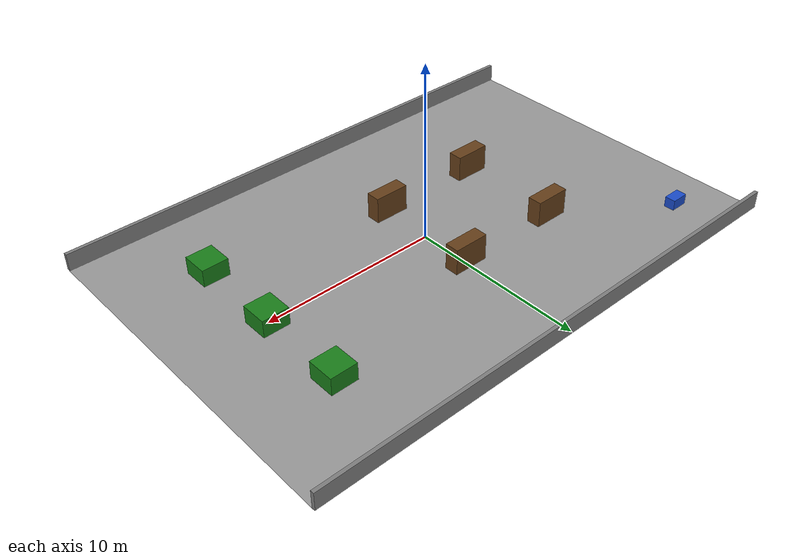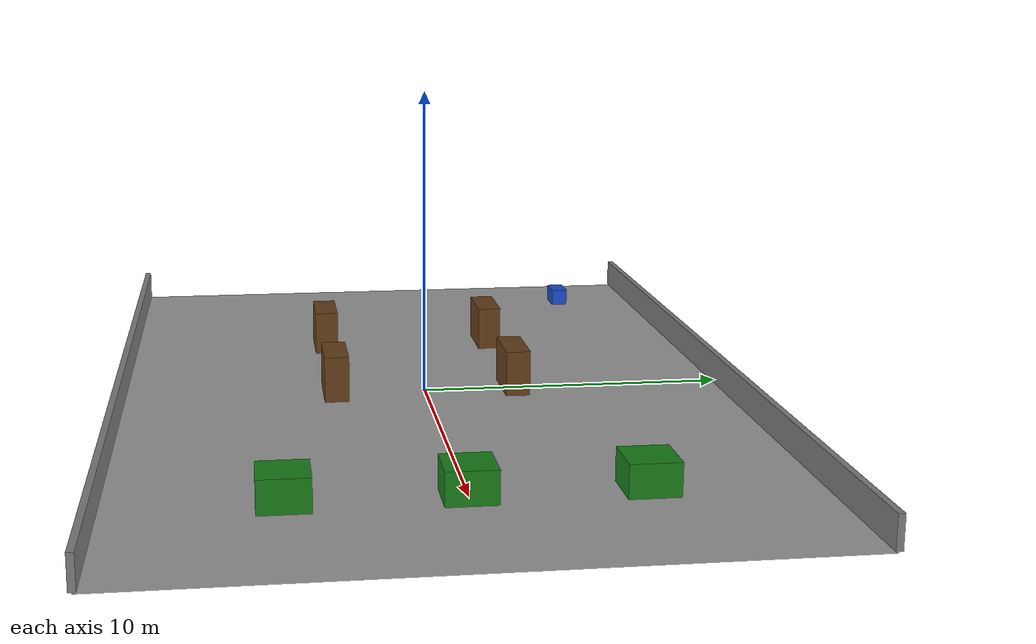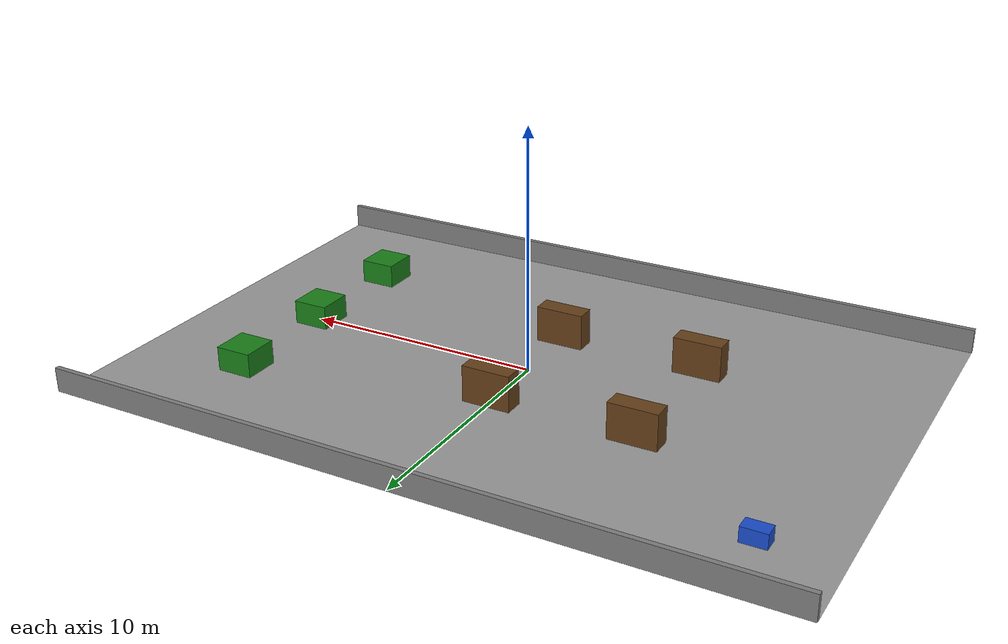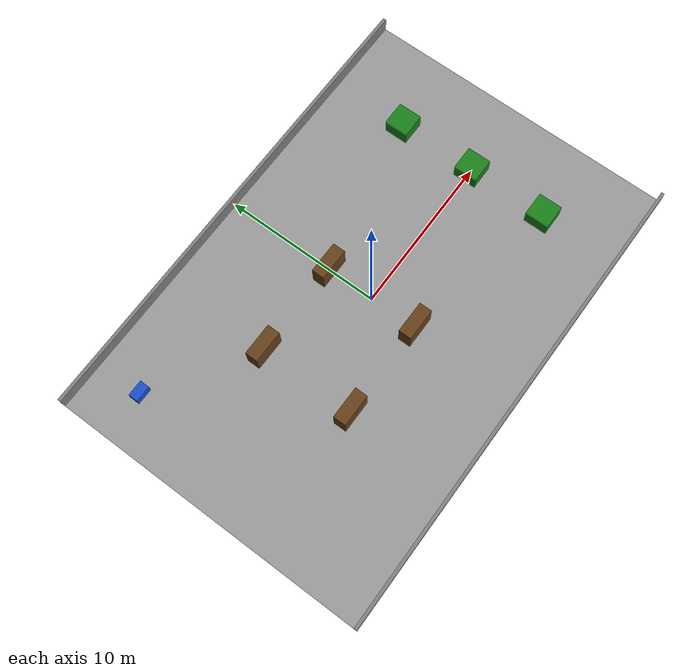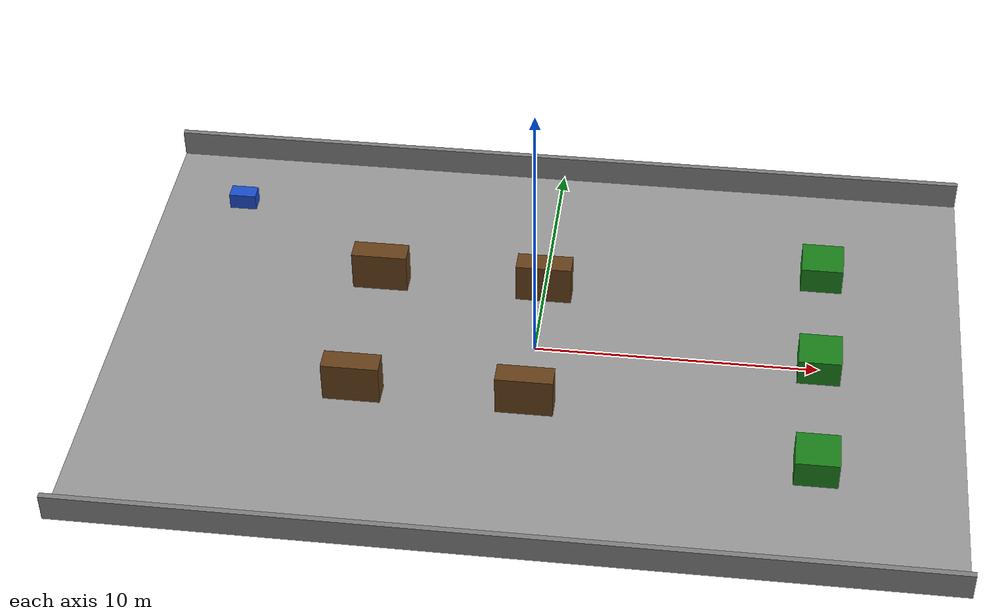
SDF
<?xml version="1.0" ?>
<sdf version="1.9">
  <world name="edgefleet_warehouse">

    <!-- Physics -->
    <physics name="1ms" type="dart">
      <max_step_size>0.001</max_step_size>
      <real_time_factor>1.0</real_time_factor>
      <real_time_update_rate>1000</real_time_update_rate>
    </physics>

    <!-- Lighting -->
    <light type="directional" name="sun">
      <pose>0 0 10 0 0 0</pose>
      <diffuse>0.8 0.8 0.8 1</diffuse>
      <specular>0.2 0.2 0.2 1</specular>
      <attenuation>
        <range>1000</range>
        <constant>0.9</constant>
        <linear>0.01</linear>
        <quadratic>0.001</quadratic>
      </attenuation>
      <direction>-0.5 0.1 -0.9</direction>
    </light>

    <!-- Ground plane -->
    <include>
      <uri>https://fuel.gazebos.org/1.0/OpenRobotics/models/Ground Plane</uri>
    </include>

    <!-- Warehouse floor — 30m x 20m -->
    <model name="warehouse_floor">
      <static>true</static>
      <pose>0 0 0 0 0 0</pose>
      <link name="floor">
        <visual name="floor_visual">
          <geometry>
            <plane>
              <normal>0 0 1</normal>
              <size>30 20</size>
            </plane>
          </geometry>
          <material>
            <ambient>0.6 0.6 0.6 1</ambient>
            <diffuse>0.6 0.6 0.6 1</diffuse>
          </material>
        </visual>
        <collision name="floor_collision">
          <geometry>
            <plane>
              <normal>0 0 1</normal>
              <size>30 20</size>
            </plane>
          </geometry>
        </collision>
      </link>
    </model>

    <!-- Shelving units -->
    <model name="shelf_a1">
      <static>true</static>
      <pose>-6 3 0.75 0 0 0</pose>
      <link name="shelf">
        <visual name="shelf_visual">
          <geometry>
            <box><size>2 0.8 1.5</size></box>
          </geometry>
          <material>
            <ambient>0.4 0.25 0.1 1</ambient>
            <diffuse>0.4 0.25 0.1 1</diffuse>
          </material>
        </visual>
        <collision name="shelf_collision">
          <geometry>
            <box><size>2 0.8 1.5</size></box>
          </geometry>
        </collision>
      </link>
    </model>

    <model name="shelf_a2">
      <static>true</static>
      <pose>-6 -3 0.75 0 0 0</pose>
      <link name="shelf">
        <visual name="shelf_visual">
          <geometry>
            <box><size>2 0.8 1.5</size></box>
          </geometry>
          <material>
            <ambient>0.4 0.25 0.1 1</ambient>
            <diffuse>0.4 0.25 0.1 1</diffuse>
          </material>
        </visual>
        <collision name="shelf_collision">
          <geometry>
            <box><size>2 0.8 1.5</size></box>
          </geometry>
        </collision>
      </link>
    </model>

    <model name="shelf_b1">
      <static>true</static>
      <pose>0 3 0.75 0 0 0</pose>
      <link name="shelf">
        <visual name="shelf_visual">
          <geometry>
            <box><size>2 0.8 1.5</size></box>
          </geometry>
          <material>
            <ambient>0.4 0.25 0.1 1</ambient>
            <diffuse>0.4 0.25 0.1 1</diffuse>
          </material>
        </visual>
        <collision name="shelf_collision">
          <geometry>
            <box><size>2 0.8 1.5</size></box>
          </geometry>
        </collision>
      </link>
    </model>

    <model name="shelf_b2">
      <static>true</static>
      <pose>0 -3 0.75 0 0 0</pose>
      <link name="shelf">
        <visual name="shelf_visual">
          <geometry>
            <box><size>2 0.8 1.5</size></box>
          </geometry>
          <material>
            <ambient>0.4 0.25 0.1 1</ambient>
            <diffuse>0.4 0.25 0.1 1</diffuse>
          </material>
        </visual>
        <collision name="shelf_collision">
          <geometry>
            <box><size>2 0.8 1.5</size></box>
          </geometry>
        </collision>
      </link>
    </model>

    <!-- Packing stations -->
    <model name="packing_station_1">
      <static>true</static>
      <pose>10 5 0.5 0 0 0</pose>
      <link name="station">
        <visual name="station_visual">
          <geometry>
            <box><size>1.5 1.5 1.0</size></box>
          </geometry>
          <material>
            <ambient>0.1 0.5 0.1 1</ambient>
            <diffuse>0.1 0.5 0.1 1</diffuse>
          </material>
        </visual>
        <collision name="station_collision">
          <geometry>
            <box><size>1.5 1.5 1.0</size></box>
          </geometry>
        </collision>
      </link>
    </model>

    <model name="packing_station_2">
      <static>true</static>
      <pose>10 0 0.5 0 0 0</pose>
      <link name="station">
        <visual name="station_visual">
          <geometry>
            <box><size>1.5 1.5 1.0</size></box>
          </geometry>
          <material>
            <ambient>0.1 0.5 0.1 1</ambient>
            <diffuse>0.1 0.5 0.1 1</diffuse>
          </material>
        </visual>
        <collision name="station_collision">
          <geometry>
            <box><size>1.5 1.5 1.0</size></box>
          </geometry>
        </collision>
      </link>
    </model>

    <model name="packing_station_3">
      <static>true</static>
      <pose>10 -5 0.5 0 0 0</pose>
      <link name="station">
        <visual name="station_visual">
          <geometry>
            <box><size>1.5 1.5 1.0</size></box>
          </geometry>
          <material>
            <ambient>0.1 0.5 0.1 1</ambient>
            <diffuse>0.1 0.5 0.1 1</diffuse>
          </material>
        </visual>
        <collision name="station_collision">
          <geometry>
            <box><size>1.5 1.5 1.0</size></box>
          </geometry>
        </collision>
      </link>
    </model>

    <!-- Charging stations -->
    <model name="charging_station_1">
      <static>true</static>
      <pose>-12 7 0.3 0 0 0</pose>
      <link name="charger">
        <visual name="charger_visual">
          <geometry>
            <box><size>1 0.6 0.6</size></box>
          </geometry>
          <material>
            <ambient>0.1 0.3 0.8 1</ambient>
            <diffuse>0.1 0.3 0.8 1</diffuse>
          </material>
        </visual>
        <collision name="charger_collision">
          <geometry>
            <box><size>1 0.6 0.6</size></box>
          </geometry>
        </collision>
      </link>
    </model>

    <!-- Walls -->
    <model name="north_wall">
      <static>true</static>
      <pose>0 10 0.5 0 0 0</pose>
      <link name="wall">
        <visual name="wall_visual">
          <geometry>
            <box><size>30 0.2 1</size></box>
          </geometry>
          <material>
            <ambient>0.5 0.5 0.5 1</ambient>
            <diffuse>0.5 0.5 0.5 1</diffuse>
          </material>
        </visual>
        <collision name="wall_collision">
          <geometry>
            <box><size>30 0.2 1</size></box>
          </geometry>
        </collision>
      </link>
    </model>

    <model name="south_wall">
      <static>true</static>
      <pose>0 -10 0.5 0 0 0</pose>
      <link name="wall">
        <visual name="wall_visual">
          <geometry>
            <box><size>30 0.2 1</size></box>
          </geometry>
          <material>
            <ambient>0.5 0.5 0.5 1</ambient>
            <diffuse>0.5 0.5 0.5 1</diffuse>
          </material>
        </visual>
        <collision name="wall_collision">
          <geometry>
            <box><size>30 0.2 1</size></box>
          </geometry>
        </collision>
      </link>
    </model>

    <!-- ROS 2 bridge plugin -->
    <plugin filename="gz-sim-ros2-system" name="gz::sim::systems::ros">
      <remapping>~/odom:=/amr01/odom</remapping>
    </plugin>

  </world>
</sdf>
